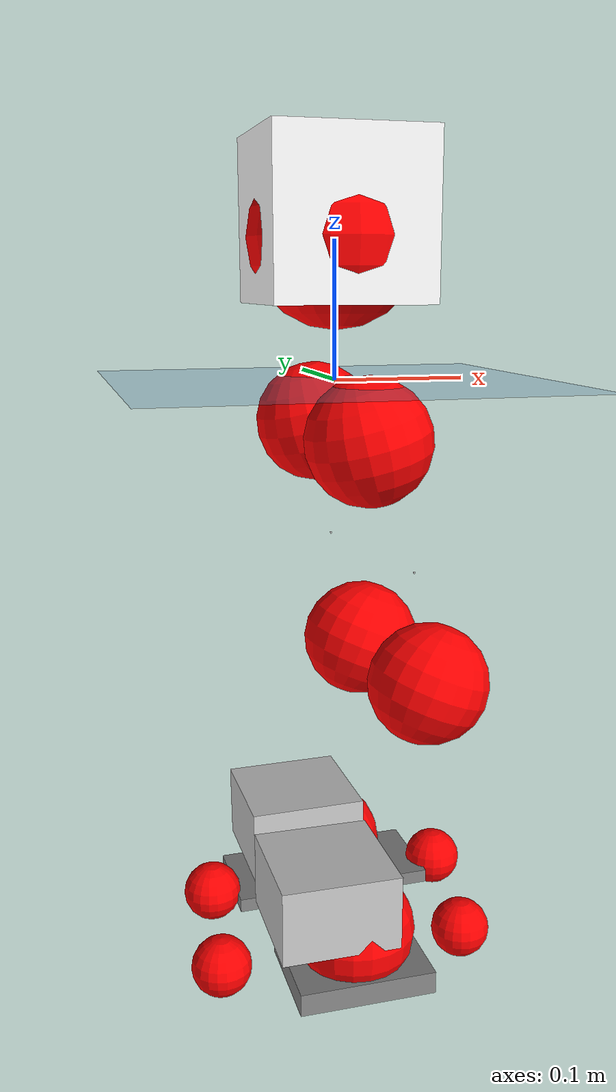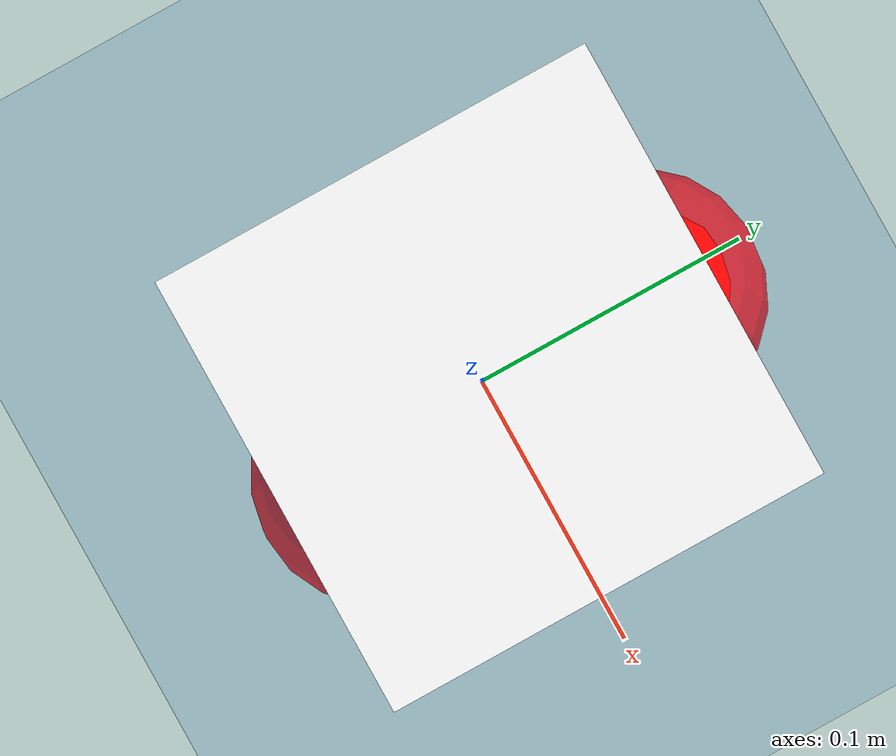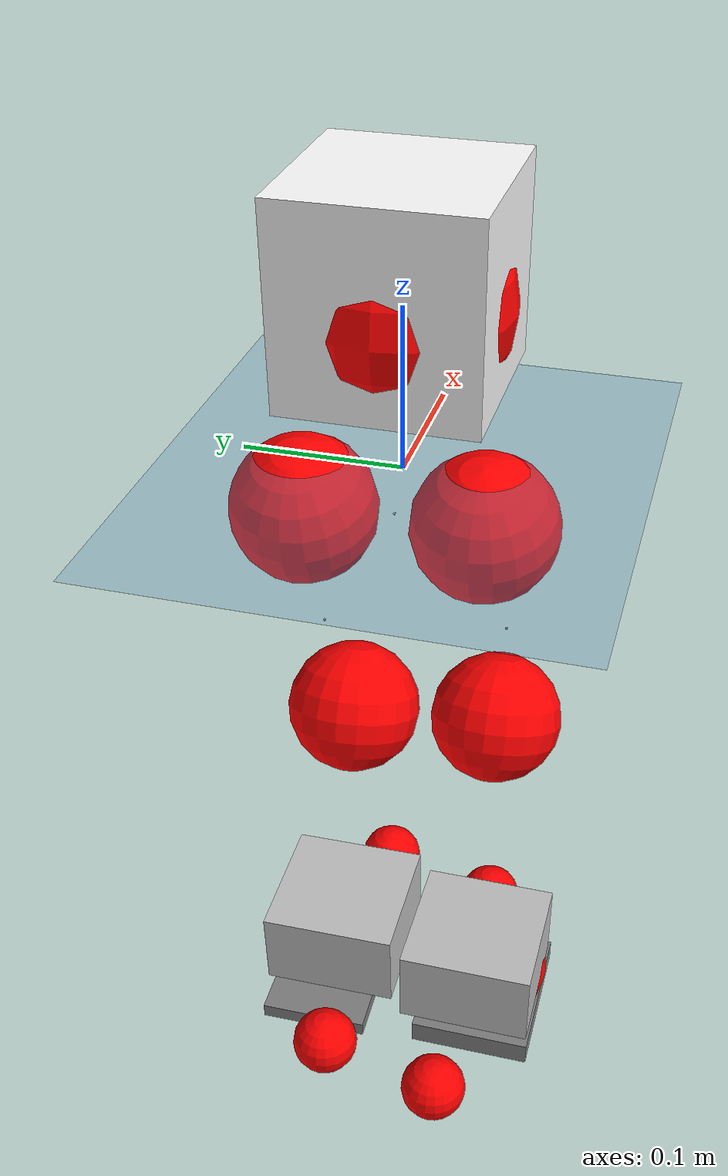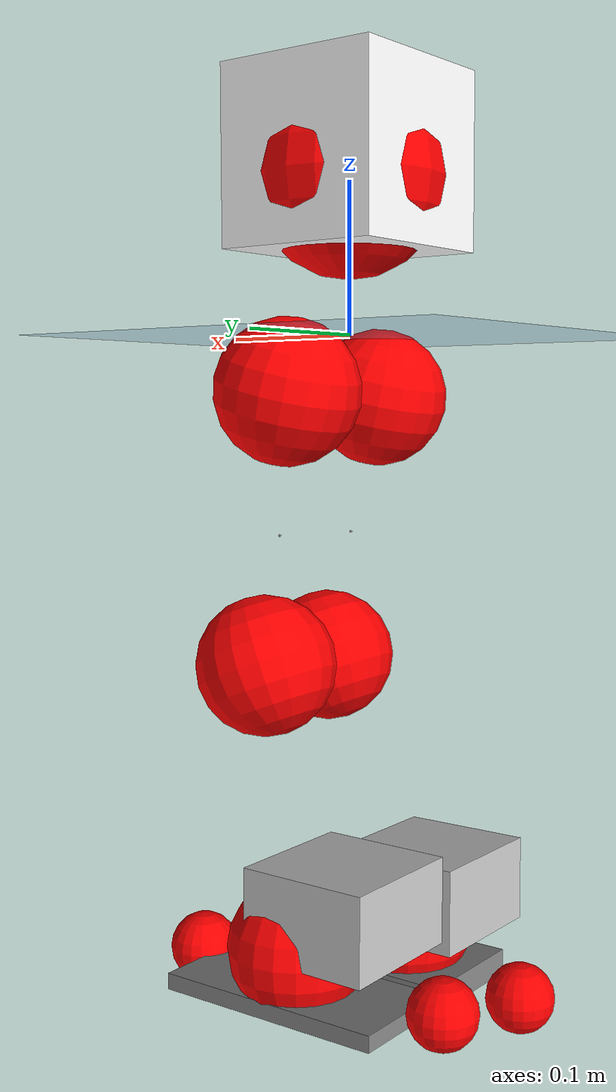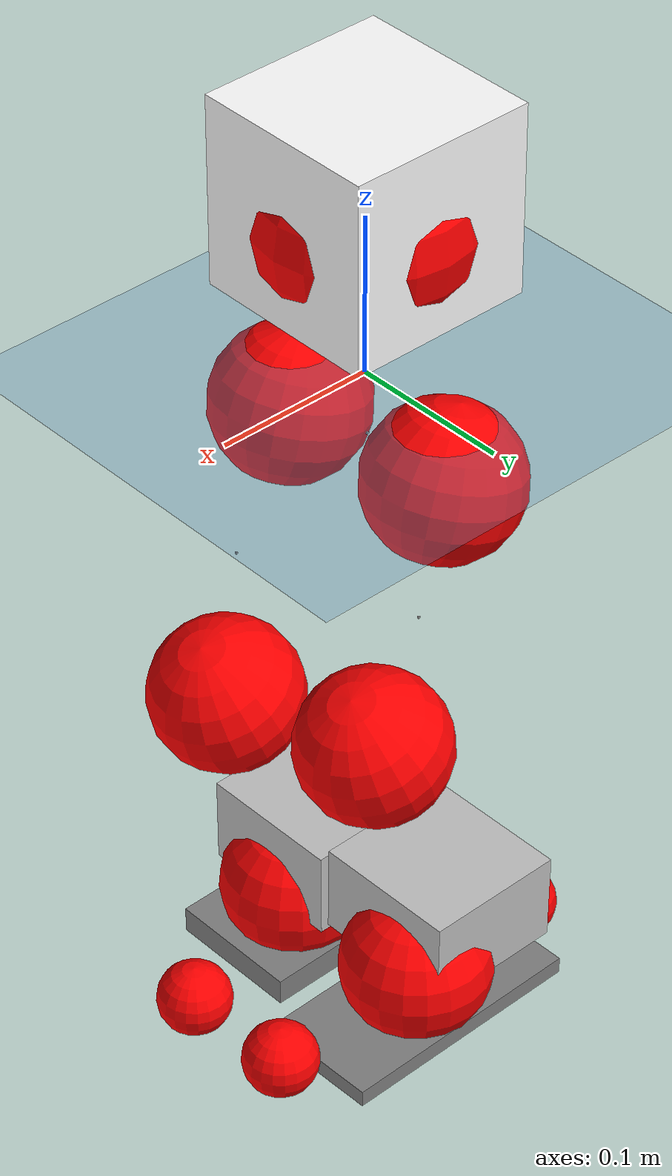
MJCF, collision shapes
<mujoco model="pi_12dof_release_v1">
  <compiler angle="radian" assetdir="assets" balanceinertia="true" inertiafromgeom="false"/>

  <option timestep="0.005" density="1.2" viscosity="2e-05"/>

  <size nkey="1"/>

  <visual>
    <quality shadowsize="8192"/>
    <map shadowclip="0.5"/>
  </visual>

  <default>
    <default class="/">
      <joint armature="0.01" damping="0.01" frictionloss="0.01"/>
      <geom contype="0" conaffinity="0" group="1" solref="-1000 -80"/>
      <site size="0.01 0.005 0.005" group="5"/>
      <general forcelimited="true" biastype="affine" gainprm="20" biasprm="0 -20 -0.5"/>
      <default class="foot">
        <geom size="0.0845 0.036 0.005" type="box" condim="6" group="4" priority="1" friction="0.9 0.2 0.2" solimp="0.015 1 0.005"/>
      </default>
      <default class="reward_collision_sphere">
        <geom group="5" rgba="1 0 0 1"/>
      </default>
    </default>
  </default>

  <asset>
    <texture type="skybox" colorspace="auto" name="//unnamed_texture_0" builtin="gradient" rgb1="0.95 0.95 0.95" rgb2="0.95 0.95 0.95" width="100" height="600"/>
    <texture type="2d" colorspace="auto" name="texplane" builtin="checker" rgb1="0.345 0.575 0.748" rgb2="0.345 0.575 0.748" markrgb="1 1 1" width="512" height="512"/>
    <material name="MatPlane" class="/" texture="texplane" texuniform="true" texrepeat="2 2" specular="0.9"/>
    <mesh name="baselink_1" class="/" file="baselink_1.STL"/>
    <mesh name="r_hip_pitch_link" class="/" file="r_hip_pitch_link.STL"/>
    <mesh name="r_hip_roll_link" class="/" file="r_hip_roll_link.STL"/>
    <mesh name="r_thigh_link" class="/" file="r_thigh_link.STL"/>
    <mesh name="r_calf_link" class="/" file="r_calf_link.STL"/>
    <mesh name="r_ankle_pitch_link" class="/" file="r_ankle_pitch_link.STL"/>
    <mesh name="r_ankle_roll_link" class="/" file="r_ankle_roll_link.STL"/>
    <mesh name="l_hip_pitch_link" class="/" file="l_hip_pitch_link.STL"/>
    <mesh name="l_hip_roll_link" class="/" file="l_hip_roll_link.STL"/>
    <mesh name="l_thigh_link" class="/" file="l_thigh_link.STL"/>
    <mesh name="l_calf_link" class="/" file="l_calf_link.STL"/>
    <mesh name="l_ankle_pitch_link" class="/" file="l_ankle_pitch_link.STL"/>
    <mesh name="l_ankle_roll_link" class="/" file="l_ankle_roll_link.STL"/>
  </asset>

  <worldbody>
    <geom name="floor" class="/" size="100 100 0.125" type="plane" group="0" material="MatPlane"/>
    <light name="toplight_shadow" class="/" pos="0 0 5" dir="0.0990148 0.0990148 -0.990148" type="directional" ambient="0.04 0.04 0.04" diffuse="0.55 0.55 0.55" specular="0.12 0.12 0.12"/>
    <light name="toplight_fill" class="/" pos="0 0 5" dir="0.0990148 0.0990148 -0.990148" type="directional" castshadow="false" ambient="0.04 0.04 0.04" diffuse="0.3 0.3 0.3" specular="0.08 0.08 0.08"/>
    <body name="trunk" pos="0.000450271 0.000355869 0.0109736" quat="1 -0.000300345 0.000109118 0.000436514">
      <inertial pos="0.00161224 -0.0148617 0.0397737" quat="0.694955 0.0087028 0.0108938 0.718918" mass="3.65567" diaginertia="0.0620445 0.00262507 0.0162684"/>
      <joint name="//unnamed_joint_0" type="free"/>
      <geom name="//unnamed_geom_1" class="/" type="mesh" density="0" rgba="1 1 1 1" mesh="baselink_1"/>
      <geom name="//unnamed_geom_2" class="/" size="0.0587878 0.0587878 0.0587878" pos="0 0 0.102731" type="box" rgba="1 1 1 1"/>
      <geom name="//unnamed_geom_3" class="reward_collision_sphere" size="0.0646665" pos="0 0 0.0898899"/>
      <site name="imu" class="/" pos="-0.0320243 0.0447395 -0.0339012" size="0.0117576"/>
      <camera name="track" class="/" pos="0 -1.54158 0" quat="0.707107 0.707107 0 0" mode="trackcom"/>
      <camera name="ego_camera" class="/" pos="0.110425 0 0.231146" quat="-0.5 -0.5 0.5 0.5"/>
      <body name="r_hip_pitch_link" pos="0.00437169 -0.00807635 -0.0448341" quat="0.992164 0.000149602 -0.124916 0.00259224">
        <inertial pos="0.0145057 -0.041484 0.00830386" quat="-0.0162281 0.716337 -0.0358148 0.696645" mass="0.686086" diaginertia="0.000810707 3.16823e-05 0.000274845"/>
        <joint name="r_hip_pitch_joint" class="/" pos="0 0 0" axis="0.0631564 -0.9973 0.0374573" range="-1.66964 1.46022" armature="0.0171727" damping="0.0513972" frictionloss="0.0185397"/>
        <geom name="//unnamed_geom_4" class="/" type="mesh" density="0" rgba="0.75294 0.75294 0.75294 1" mesh="r_hip_pitch_link"/>
        <geom name="//unnamed_geom_5" class="/" size="0.000587878 0.000587878 0.000587878" type="box" rgba="0.75294 0.75294 0.75294 1"/>
        <body name="r_hip_roll_link" pos="0.00494866 -0.0407353 -0.0076459" quat="1 -1.69667e-05 -4.97145e-06 1.38571e-05">
          <inertial pos="-0.000481462 0.00013608 -0.0692921" quat="0.704336 -0.0796201 -0.076307 0.701247" mass="0.692319" diaginertia="0.00221504 7.53323e-05 0.000626697"/>
          <joint name="r_hip_roll_joint" class="/" pos="0 0 0" axis="-0.998332 -0.021641 0.0535324" stiffness="0.0363804" range="-0.108113 0.541127" armature="0.0138179" damping="0.085523" frictionloss="0.00636251"/>
          <geom name="//unnamed_geom_6" class="/" type="mesh" density="0" rgba="0.75294 0.75294 0.75294 1" mesh="r_hip_roll_link"/>
          <geom name="//unnamed_geom_7" class="/" size="0.000587878 0.000587878 0.000587878" type="box" rgba="0.75294 0.75294 0.75294 1"/>
          <geom name="//unnamed_geom_8" class="reward_collision_sphere" size="0.0470302"/>
          <body name="r_thigh_link" pos="0.00754642 -0.0107777 -0.100658" quat="0.999975 -0.00301721 0.00515339 0.0039104">
            <inertial pos="0.00200538 0.000953322 -0.0617074" quat="0.736705 0.67621 0.00202421 0.000616291" mass="0.22675" diaginertia="0.000843571 2.64995e-05 0.000225455"/>
            <joint name="r_thigh_joint" class="/" pos="0 0 0" axis="-0.000545222 0.0109259 -0.99994" range="-0.290764 0.809987" armature="0.00431502" damping="0" frictionloss="0.0114759"/>
            <geom name="//unnamed_geom_9" class="/" type="mesh" density="0" rgba="0.75294 0.75294 0.75294 1" mesh="r_thigh_link"/>
            <geom name="//unnamed_geom_10" class="/" size="0.000587878 0.000587878 0.000587878" type="box" rgba="0.75294 0.75294 0.75294 1"/>
            <body name="r_calf_link" pos="-0.00626391 0.00734999 -0.0911954" quat="0.948798 0.00483486 0.315844 0.00141324">
              <inertial pos="-0.000570786 -0.00424361 -0.0857886" quat="0.999984 -0.00297105 -0.000267109 0.004835" mass="1.43682" diaginertia="0.0292552 0.00123133 0.000590435"/>
              <joint name="r_calf_joint" class="/" pos="0 0 0" axis="-0.0734345 -0.996731 0.0336751" range="-1.49925 0.661282" armature="0.0128932" damping="0.0137849" frictionloss="0.0150272"/>
              <geom name="//unnamed_geom_11" class="/" type="mesh" density="0" rgba="0.75294 0.75294 0.75294 1" mesh="r_calf_link"/>
              <geom name="//unnamed_geom_12" class="/" size="0.000587878 0.000587878 0.000587878" type="box" rgba="0.75294 0.75294 0.75294 1"/>
              <geom name="//unnamed_geom_13" class="reward_collision_sphere" size="0.0470302"/>
              <body name="r_ankle_pitch_link" pos="-0.0156406 -0.00908981 -0.177806" quat="0.980284 -0.000749453 -0.197578 -0.00248068">
                <inertial pos="0.00601643 0.00589796 -0.000150027" quat="0.00313153 0.707307 -0.00273198 0.706894" mass="0.252758" diaginertia="0.00200818 5.28628e-05 0.000317444"/>
                <joint name="r_ankle_pitch_joint" class="/" pos="0 0 0" axis="0.0142313 -0.99918 0.0379082" stiffness="0.0370956" range="-1.09608 0.349929" armature="0.0105551" damping="0" frictionloss="0.0041695"/>
                <geom name="//unnamed_geom_14" class="/" type="mesh" density="0" rgba="0.75294 0.75294 0.75294 1" mesh="r_ankle_pitch_link"/>
                <geom name="//unnamed_geom_15" class="/" size="0.0458544 0.0470302 0.0293939" type="box" rgba="0.75294 0.75294 0.75294 1"/>
                <body name="r_ankle_roll_link" pos="0.0962266 -0.00227877 -0.00863356" quat="0.999998 -0.00189838 -0.000758788 0.000217206">
                  <inertial pos="-0.0281475 0.00489592 -0.034004" quat="0.569929 0.422378 0.451607 0.541137" mass="1.02084" diaginertia="0.00693156 0.000284855 0.0010036"/>
                  <joint name="r_ankle_roll_joint" class="/" pos="0 0 0" axis="-0.999998 -0.00107161 0.00163217" range="-0.210864 0.228526" armature="0.0121597" damping="0.000344927" frictionloss="0.00244153"/>
                  <geom name="//unnamed_geom_16" class="/" type="mesh" density="0" rgba="0.75294 0.75294 0.75294 1" mesh="r_ankle_roll_link"/>
                  <geom name="//unnamed_geom_17" class="/" type="mesh" rgba="0.75294 0.75294 0.75294 1" mesh="r_ankle_roll_link"/>
                  <geom name="right_foot" class="foot" size="0.0533609 0.0437447 0.00885864" pos="-0.0750891 0 -0.0565022"/>
                  <geom name="//unnamed_geom_19" class="reward_collision_sphere" size="0.0470302" pos="-0.0736167 0 -0.0256828"/>
                  <geom name="//unnamed_geom_20" class="reward_collision_sphere" size="0.0235151" pos="0.022085 0.0154158 -0.0513657"/>
                  <geom name="//unnamed_geom_21" class="reward_collision_sphere" size="0.0235151" pos="-0.17668 0.0154158 -0.0513657"/>
                  <site name="right_foot" class="foot" pos="-0.0750891 0 -0.0565022" size="0.0117576"/>
                </body>
              </body>
            </body>
          </body>
        </body>
      </body>
      <body name="l_hip_pitch_link" pos="0.00451717 0.00674224 -0.0458986" quat="0.992112 -0.00080825 -0.125352 0.000948279">
        <inertial pos="0.00956425 0.0548199 -0.00410754" quat="-0.05517 0.644551 0.0316538 0.761911" mass="0.766093" diaginertia="0.000820448 2.50168e-05 0.000386661"/>
        <joint name="l_hip_pitch_joint" class="/" pos="0 0 0" axis="-0.000509347 0.999998 0.00178385" stiffness="0.00228903" range="-1.48739 2.03347" armature="0.00563761" damping="0" frictionloss="0.0192153"/>
        <geom name="//unnamed_geom_22" class="/" type="mesh" density="0" rgba="0.75294 0.75294 0.75294 1" mesh="l_hip_pitch_link"/>
        <geom name="//unnamed_geom_23" class="/" size="0.000587878 0.000587878 0.000587878" type="box" rgba="0.75294 0.75294 0.75294 1"/>
        <body name="l_hip_roll_link" pos="-0.00424416 0.0568419 -0.00131945" quat="0.99999 0.000786644 -0.00259031 0.00342108">
          <inertial pos="0.00329444 0.0110251 -0.0807995" quat="0.700193 -0.040879 -0.0835133 0.707873" mass="0.597566" diaginertia="0.0019834 6.89123e-05 0.000330102"/>
          <joint name="l_hip_roll_joint" class="/" pos="0 0 0" axis="-0.999237 0.00388514 -0.0388703" stiffness="0.0276789" range="-0.822641 0.404414" armature="0.00820824" damping="0" frictionloss="0.0102615"/>
          <geom name="//unnamed_geom_24" class="/" type="mesh" density="0" rgba="0.75294 0.75294 0.75294 1" mesh="l_hip_roll_link"/>
          <geom name="//unnamed_geom_25" class="/" size="0.000587878 0.000587878 0.000587878" type="box" rgba="0.75294 0.75294 0.75294 1"/>
          <geom name="//unnamed_geom_26" class="reward_collision_sphere" size="0.0470302"/>
          <body name="l_thigh_link" pos="-0.0117891 -0.00568157 -0.0914774" quat="0.99998 0.00138493 0.00481606 0.00375984">
            <inertial pos="-0.0118447 0.00538209 -0.0505127" quat="0.675142 0.737687 0.000334961 0.000480939" mass="0.169231" diaginertia="0.000734067 1.67845e-05 0.000126432"/>
            <joint name="l_thigh_joint" class="/" pos="0 0 0" axis="-0.0143658 0.0215558 -0.999664" range="-0.709495 0.553238" armature="0.0166003" damping="0" frictionloss="0.0182323"/>
            <geom name="//unnamed_geom_27" class="/" type="mesh" density="0" rgba="0.75294 0.75294 0.75294 1" mesh="l_thigh_link"/>
            <geom name="//unnamed_geom_28" class="/" size="0.000587878 0.000587878 0.000587878" type="box" rgba="0.75294 0.75294 0.75294 1"/>
            <body name="l_calf_link" pos="-0.000177259 -0.0120091 -0.091093" quat="0.949707 -0.00109392 0.313136 -0.000611849">
              <inertial pos="-0.00418615 -0.00529511 -0.0818417" quat="0.996872 -0.070382 -0.0238454 0.0269089" mass="1.5916" diaginertia="0.024102 0.0011853 0.000680123"/>
              <joint name="l_calf_joint" class="/" pos="0 0 0" axis="0.00165749 0.999999 -0.000451492" range="-0.745074 1.81528" armature="0.0121943" damping="0" frictionloss="0.0176605"/>
              <geom name="//unnamed_geom_29" class="/" type="mesh" density="0" rgba="0.75294 0.75294 0.75294 1" mesh="l_calf_link"/>
              <geom name="//unnamed_geom_30" class="/" size="0.000587878 0.000587878 0.000587878" type="box" rgba="0.75294 0.75294 0.75294 1"/>
              <geom name="//unnamed_geom_31" class="reward_collision_sphere" size="0.0470302"/>
              <body name="l_ankle_pitch_link" pos="0.00331419 -0.00551094 -0.164905" quat="0.98008 -0.00090636 -0.198597 0.0011005">
                <inertial pos="0.00849111 -0.0170034 -0.00918453" quat="-0.00159586 0.746735 0.0179613 0.664878" mass="0.341968" diaginertia="0.00261861 7.33819e-05 0.000519396"/>
                <joint name="l_ankle_pitch_joint" class="/" pos="0 0 0" axis="0.0690165 0.997359 -0.0226402" range="-0.531222 1.30703" armature="0.0113452" damping="0.0628417" frictionloss="0.0145555"/>
                <geom name="//unnamed_geom_32" class="/" type="mesh" density="0" rgba="0.75294 0.75294 0.75294 1" mesh="l_ankle_pitch_link"/>
                <geom name="//unnamed_geom_33" class="/" size="0.0458544 0.0470302 0.0293939" type="box" rgba="0.75294 0.75294 0.75294 1"/>
                <body name="l_ankle_roll_link" pos="0.102642 0.0119412 -0.00480518" quat="0.999984 0.00421279 0.00259137 0.00271637">
                  <inertial pos="-0.0434245 0.000487304 -0.0189348" quat="0.595185 0.394463 0.471728 0.517326" mass="1.09384" diaginertia="0.00820732 0.000332691 0.000868665"/>
                  <joint name="l_ankle_roll_joint" class="/" pos="0 0 0" axis="-0.996689 0.0803467 -0.0124673" stiffness="0.0324637" range="-0.172931 0.486283" armature="0.0126796" damping="0" frictionloss="0.0212512"/>
                  <geom name="//unnamed_geom_34" class="/" type="mesh" density="0" rgba="0.75294 0.75294 0.75294 1" mesh="l_ankle_roll_link"/>
                  <geom name="//unnamed_geom_35" class="/" type="mesh" rgba="0.75294 0.75294 0.75294 1" mesh="l_ankle_roll_link"/>
                  <geom name="left_foot" class="foot" size="0.0822443 0.038418 0.00552141" pos="-0.0750891 0 -0.0565022"/>
                  <geom name="//unnamed_geom_37" class="reward_collision_sphere" size="0.0470302" pos="-0.0736167 0 -0.0256828"/>
                  <geom name="//unnamed_geom_38" class="reward_collision_sphere" size="0.0235151" pos="0.022085 -0.0154158 -0.0513657"/>
                  <geom name="//unnamed_geom_39" class="reward_collision_sphere" size="0.0235151" pos="-0.17668 -0.0154158 -0.0513657"/>
                  <site name="left_foot" class="foot" pos="-0.0750891 0 -0.0565022" size="0.0117576"/>
                </body>
              </body>
            </body>
          </body>
        </body>
      </body>
    </body>
  </worldbody>

  <contact>
    <pair class="/" geom1="floor" geom2="right_foot" name="//unnamed_contact_1"/>
    <pair class="/" geom1="floor" geom2="left_foot" name="//unnamed_contact_0"/>
  </contact>

  <actuator>
    <general name="r_hip_pitch_joint" class="/" joint="r_hip_pitch_joint" forcerange="-34.931 34.931" gainprm="27.7978" biasprm="0 -27.7978 -0.532061"/>
    <general name="r_hip_roll_joint" class="/" joint="r_hip_roll_joint" forcerange="-25.3947 25.3947" gainprm="27.7978" biasprm="0 -27.7978 -0.532061"/>
    <general name="r_thigh_joint" class="/" joint="r_thigh_joint" forcerange="-33.7538 33.7538" gainprm="27.7978" biasprm="0 -27.7978 -0.532061"/>
    <general name="r_calf_joint" class="/" joint="r_calf_joint" forcerange="-18.8105 18.8105" gainprm="27.7978" biasprm="0 -27.7978 -0.532061"/>
    <general name="r_ankle_pitch_joint" class="/" joint="r_ankle_pitch_joint" forcerange="-15.3428 15.3428" gainprm="27.7978" biasprm="0 -27.7978 -0.532061"/>
    <general name="r_ankle_roll_joint" class="/" joint="r_ankle_roll_joint" forcerange="-11.7456 11.7456" gainprm="27.7978" biasprm="0 -27.7978 -0.532061"/>
    <general name="l_hip_pitch_joint" class="/" joint="l_hip_pitch_joint" forcerange="-33.1008 33.1008" gainprm="27.7978" biasprm="0 -27.7978 -0.532061"/>
    <general name="l_hip_roll_joint" class="/" joint="l_hip_roll_joint" forcerange="-39.5483 39.5483" gainprm="27.7978" biasprm="0 -27.7978 -0.532061"/>
    <general name="l_thigh_joint" class="/" joint="l_thigh_joint" forcerange="-19.9435 19.9435" gainprm="27.7978" biasprm="0 -27.7978 -0.532061"/>
    <general name="l_calf_joint" class="/" joint="l_calf_joint" forcerange="-30.0625 30.0625" gainprm="27.7978" biasprm="0 -27.7978 -0.532061"/>
    <general name="l_ankle_pitch_joint" class="/" joint="l_ankle_pitch_joint" forcerange="-18.6897 18.6897" gainprm="27.7978" biasprm="0 -27.7978 -0.532061"/>
    <general name="l_ankle_roll_joint" class="/" joint="l_ankle_roll_joint" forcerange="-32.0126 32.0126" gainprm="27.7978" biasprm="0 -27.7978 -0.532061"/>
  </actuator>

  <sensor>
    <gyro site="imu" name="imu_angular_velocity"/>
    <velocimeter site="imu" name="imu_linear_velocity"/>
    <framelinvel objtype="site" objname="left_foot" name="left_foot_global_linear_velocity"/>
    <framelinvel objtype="site" objname="right_foot" name="right_foot_global_linear_velocity"/>
  </sensor>

  <keyframe>
    <key name="home" qpos="0 0 0.291 1 0 0 0 0.4 0 0 -0.8 0.4 0 -0.4 0 0 0.8 -0.4 0"/>
  </keyframe>
</mujoco>
